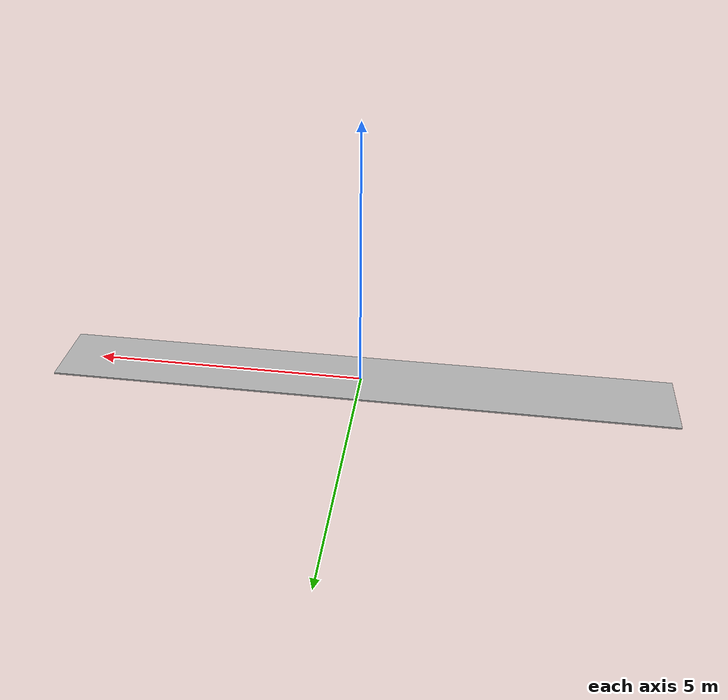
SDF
<?xml version="1.0" ?>
<sdf version="1.5">
  <model name="aisle_11m">
    <static>true</static>
    <link name="link">
      <pose>0 0 0.01 0 0 0</pose>
      <collision name="aisle_11mC">
        <geometry>
          <box>
            <size>11.4 1.3 0.03</size>
          </box>
        </geometry>
      </collision>
      <visual name="visual">
        <cast_shadows>false</cast_shadows>
        <geometry>
          <box>
            <size>11.4 1.3 0.03</size>
          </box>
        </geometry>
        <material>
          <script>
            <uri>model://aisle_11m/materials/scripts</uri>
            <uri>model://aisle_11m/materials/textures</uri>
            <name>vrc/aisle_11m</name>
          </script>
        </material>
      </visual>
    </link>
  </model>
</sdf>
